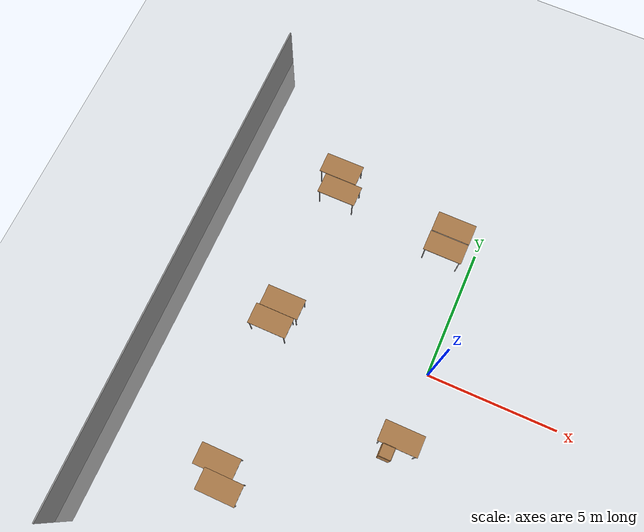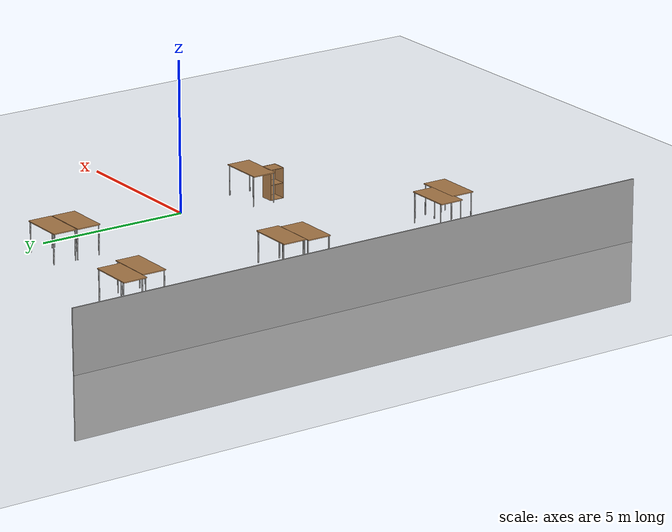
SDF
<sdf version="1.6">
 <world name="default">
  <model name="ground_plane">
   <static>1</static>
   <link name="link">
    <collision name="collision">
     <geometry><plane><normal>0 0 1</normal><size>100 100</size></plane></geometry>
     <surface><friction><ode><mu>100</mu><mu2>50</mu2></ode></friction></surface>
    </collision>
    <visual name="visual">
     <cast_shadows>0</cast_shadows>
     <geometry><plane><normal>0 0 1</normal><size>100 100</size></plane></geometry>
     <material>
      <script><uri>file://media/materials/scripts/gazebo.material</uri><name>Gazebo/Grey</name></script>
     </material>
    </visual>
   </link>
  </model>
  <model name="grey_wall_3">
   <link name="link">
    <inertial>
     <mass>1</mass>
     <inertia><ixx>1</ixx><ixy>0</ixy><ixz>0</ixz><iyy>1</iyy><iyz>0</iyz><izz>1</izz></inertia>
    </inertial>
    <visual name="visual">
     <cast_shadows>0</cast_shadows>
     <geometry><box><size>20 0.05 4.0</size></box></geometry>
     <material>
      <script>
       <uri>model://grey_wall/materials/scripts</uri>
       <uri>model://grey_wall/materials/textures</uri>
       <name>vrc/grey_wall</name>
      </script>
      <ambient>1 1 1 1</ambient>
      <diffuse>1 1 1 1</diffuse>
      <specular>0 0 0 1</specular>
      <emissive>0 0 0 1</emissive>
      <shader type="vertex"><normal_map>__default__</normal_map></shader>
     </material>
    </visual>
    <collision name="collision">
     <geometry><box><size>20 0.05 4.0</size></box></geometry>
     <surface>
      <friction>
       <ode><mu>1</mu><mu2>1</mu2><fdir1>0 0 0</fdir1><slip1>0</slip1><slip2>0</slip2></ode>
       <torsional>
        <coefficient>1</coefficient>
        <patch_radius>0</patch_radius>
        <surface_radius>0</surface_radius>
        <use_patch_radius>1</use_patch_radius>
        <ode><slip>0</slip></ode>
       </torsional>
      </friction>
      <bounce><restitution_coefficient>0</restitution_coefficient><threshold>1e+06</threshold></bounce>
      <contact>
       <collide_without_contact>0</collide_without_contact>
       <collide_without_contact_bitmask>1</collide_without_contact_bitmask>
       <collide_bitmask>1</collide_bitmask>
       <ode>
        <soft_cfm>0</soft_cfm>
        <soft_erp>0.2</soft_erp>
        <kp>1e+13</kp>
        <kd>1</kd>
        <max_vel>0.01</max_vel>
        <min_depth>0</min_depth>
       </ode>
       <bullet>
        <split_impulse>1</split_impulse>
        <split_impulse_penetration_threshold>-0.01</split_impulse_penetration_threshold>
        <soft_cfm>0</soft_cfm>
        <soft_erp>0.2</soft_erp>
        <kp>1e+13</kp>
        <kd>1</kd>
       </bullet>
      </contact>
     </surface>
    </collision>
   </link>
   <static>1</static>
   <pose>-10 0 0 0 0 -1.5708</pose>
  </model>
  <model name="table">
   <static>1</static>
   <link name="link">
    <collision name="surface">
     <pose>0 0 1 0 -0 0</pose>
     <geometry><box><size>1.5 0.8 0.03</size></box></geometry>
     <surface><friction><ode><mu>0.6</mu><mu2>0.6</mu2></ode></friction></surface>
    </collision>
    <visual name="visual1">
     <pose>0 0 1 0 -0 0</pose>
     <geometry><box><size>1.5 0.8 0.03</size></box></geometry>
     <material>
      <script><uri>file://media/materials/scripts/gazebo.material</uri><name>Gazebo/Wood</name></script>
     </material>
    </visual>
    <collision name="front_left_leg">
     <pose>0.68 0.38 0.5 0 -0 0</pose>
     <geometry><cylinder><radius>0.02</radius><length>1</length></cylinder></geometry>
    </collision>
    <visual name="front_left_leg">
     <pose>0.68 0.38 0.5 0 -0 0</pose>
     <geometry><cylinder><radius>0.02</radius><length>1</length></cylinder></geometry>
     <material>
      <script><uri>file://media/materials/scripts/gazebo.material</uri><name>Gazebo/Grey</name></script>
     </material>
    </visual>
    <collision name="front_right_leg">
     <pose>0.68 -0.38 0.5 0 -0 0</pose>
     <geometry><cylinder><radius>0.02</radius><length>1</length></cylinder></geometry>
    </collision>
    <visual name="front_right_leg">
     <pose>0.68 -0.38 0.5 0 -0 0</pose>
     <geometry><cylinder><radius>0.02</radius><length>1</length></cylinder></geometry>
     <material>
      <script><uri>file://media/materials/scripts/gazebo.material</uri><name>Gazebo/Grey</name></script>
     </material>
    </visual>
    <collision name="back_right_leg">
     <pose>-0.68 -0.38 0.5 0 -0 0</pose>
     <geometry><cylinder><radius>0.02</radius><length>1</length></cylinder></geometry>
    </collision>
    <visual name="back_right_leg">
     <pose>-0.68 -0.38 0.5 0 -0 0</pose>
     <geometry><cylinder><radius>0.02</radius><length>1</length></cylinder></geometry>
     <material>
      <script><uri>file://media/materials/scripts/gazebo.material</uri><name>Gazebo/Grey</name></script>
     </material>
    </visual>
    <collision name="back_left_leg">
     <pose>-0.68 0.38 0.5 0 -0 0</pose>
     <geometry><cylinder><radius>0.02</radius><length>1</length></cylinder></geometry>
    </collision>
    <visual name="back_left_leg">
     <pose>-0.68 0.38 0.5 0 -0 0</pose>
     <geometry><cylinder><radius>0.02</radius><length>1</length></cylinder></geometry>
     <material>
      <script><uri>file://media/materials/scripts/gazebo.material</uri><name>Gazebo/Grey</name></script>
     </material>
    </visual>
   </link>
   <pose>-0.079983 -2.60231 0 0 -0 0</pose>
  </model>
  <model name="table_0">
   <static>1</static>
   <link name="link">
    <collision name="surface">
     <pose>0 0 1 0 -0 0</pose>
     <geometry><box><size>1.5 0.8 0.03</size></box></geometry>
     <surface><friction><ode><mu>0.6</mu><mu2>0.6</mu2></ode></friction></surface>
    </collision>
    <visual name="visual1">
     <pose>0 0 1 0 -0 0</pose>
     <geometry><box><size>1.5 0.8 0.03</size></box></geometry>
     <material>
      <script><uri>file://media/materials/scripts/gazebo.material</uri><name>Gazebo/Wood</name></script>
     </material>
    </visual>
    <collision name="front_left_leg">
     <pose>0.68 0.38 0.5 0 -0 0</pose>
     <geometry><cylinder><radius>0.02</radius><length>1</length></cylinder></geometry>
    </collision>
    <visual name="front_left_leg">
     <pose>0.68 0.38 0.5 0 -0 0</pose>
     <geometry><cylinder><radius>0.02</radius><length>1</length></cylinder></geometry>
     <material>
      <script><uri>file://media/materials/scripts/gazebo.material</uri><name>Gazebo/Grey</name></script>
     </material>
    </visual>
    <collision name="front_right_leg">
     <pose>0.68 -0.38 0.5 0 -0 0</pose>
     <geometry><cylinder><radius>0.02</radius><length>1</length></cylinder></geometry>
    </collision>
    <visual name="front_right_leg">
     <pose>0.68 -0.38 0.5 0 -0 0</pose>
     <geometry><cylinder><radius>0.02</radius><length>1</length></cylinder></geometry>
     <material>
      <script><uri>file://media/materials/scripts/gazebo.material</uri><name>Gazebo/Grey</name></script>
     </material>
    </visual>
    <collision name="back_right_leg">
     <pose>-0.68 -0.38 0.5 0 -0 0</pose>
     <geometry><cylinder><radius>0.02</radius><length>1</length></cylinder></geometry>
    </collision>
    <visual name="back_right_leg">
     <pose>-0.68 -0.38 0.5 0 -0 0</pose>
     <geometry><cylinder><radius>0.02</radius><length>1</length></cylinder></geometry>
     <material>
      <script><uri>file://media/materials/scripts/gazebo.material</uri><name>Gazebo/Grey</name></script>
     </material>
    </visual>
    <collision name="back_left_leg">
     <pose>-0.68 0.38 0.5 0 -0 0</pose>
     <geometry><cylinder><radius>0.02</radius><length>1</length></cylinder></geometry>
    </collision>
    <visual name="back_left_leg">
     <pose>-0.68 0.38 0.5 0 -0 0</pose>
     <geometry><cylinder><radius>0.02</radius><length>1</length></cylinder></geometry>
     <material>
      <script><uri>file://media/materials/scripts/gazebo.material</uri><name>Gazebo/Grey</name></script>
     </material>
    </visual>
   </link>
   <pose>-1.18424 5.36108 0 0 -0 0</pose>
  </model>
  <model name="table_1">
   <static>1</static>
   <link name="link">
    <collision name="surface">
     <pose>0 0 1 0 -0 0</pose>
     <geometry><box><size>1.5 0.8 0.03</size></box></geometry>
     <surface><friction><ode><mu>0.6</mu><mu2>0.6</mu2></ode></friction></surface>
    </collision>
    <visual name="visual1">
     <pose>0 0 1 0 -0 0</pose>
     <geometry><box><size>1.5 0.8 0.03</size></box></geometry>
     <material>
      <script><uri>file://media/materials/scripts/gazebo.material</uri><name>Gazebo/Wood</name></script>
     </material>
    </visual>
    <collision name="front_left_leg">
     <pose>0.68 0.38 0.5 0 -0 0</pose>
     <geometry><cylinder><radius>0.02</radius><length>1</length></cylinder></geometry>
    </collision>
    <visual name="front_left_leg">
     <pose>0.68 0.38 0.5 0 -0 0</pose>
     <geometry><cylinder><radius>0.02</radius><length>1</length></cylinder></geometry>
     <material>
      <script><uri>file://media/materials/scripts/gazebo.material</uri><name>Gazebo/Grey</name></script>
     </material>
    </visual>
    <collision name="front_right_leg">
     <pose>0.68 -0.38 0.5 0 -0 0</pose>
     <geometry><cylinder><radius>0.02</radius><length>1</length></cylinder></geometry>
    </collision>
    <visual name="front_right_leg">
     <pose>0.68 -0.38 0.5 0 -0 0</pose>
     <geometry><cylinder><radius>0.02</radius><length>1</length></cylinder></geometry>
     <material>
      <script><uri>file://media/materials/scripts/gazebo.material</uri><name>Gazebo/Grey</name></script>
     </material>
    </visual>
    <collision name="back_right_leg">
     <pose>-0.68 -0.38 0.5 0 -0 0</pose>
     <geometry><cylinder><radius>0.02</radius><length>1</length></cylinder></geometry>
    </collision>
    <visual name="back_right_leg">
     <pose>-0.68 -0.38 0.5 0 -0 0</pose>
     <geometry><cylinder><radius>0.02</radius><length>1</length></cylinder></geometry>
     <material>
      <script><uri>file://media/materials/scripts/gazebo.material</uri><name>Gazebo/Grey</name></script>
     </material>
    </visual>
    <collision name="back_left_leg">
     <pose>-0.68 0.38 0.5 0 -0 0</pose>
     <geometry><cylinder><radius>0.02</radius><length>1</length></cylinder></geometry>
    </collision>
    <visual name="back_left_leg">
     <pose>-0.68 0.38 0.5 0 -0 0</pose>
     <geometry><cylinder><radius>0.02</radius><length>1</length></cylinder></geometry>
     <material>
      <script><uri>file://media/materials/scripts/gazebo.material</uri><name>Gazebo/Grey</name></script>
     </material>
    </visual>
   </link>
   <pose>-1.19395 4.53347 0 0 -0 0</pose>
  </model>
  <model name="cabinet_clone">
   <static>1</static>
   <link name="cabinet_bottom_plate">
    <inertial>
     <pose>0 0 -1 0 -0 0</pose>
     <inertia><ixx>2.05</ixx><ixy>0</ixy><ixz>0</ixz><iyy>2.05</iyy><iyz>0</iyz><izz>2.05</izz></inertia>
     <mass>25</mass>
    </inertial>
    <collision name="cabinet_bottom_plate_geom">
     <pose>0 0 0.01 0 -0 0</pose>
     <geometry><box><size>0.45 0.45 0.02</size></box></geometry>
    </collision>
    <visual name="cabinet_bottom_plate_geom_visual">
     <pose>0 0 0.01 0 -0 0</pose>
     <geometry><box><size>0.45 0.45 0.02</size></box></geometry>
     <material>
      <script><uri>file://media/materials/scripts/gazebo.material</uri><name>Gazebo/Wood</name></script>
     </material>
    </visual>
    <collision name="cabinet_bottom_plate_geom_cabinet_back_plate">
     <pose>0.235 0 0.51 0 -0 0</pose>
     <geometry><box><size>0.02 0.45 1.02</size></box></geometry>
    </collision>
    <visual name="cabinet_bottom_plate_geom_cabinet_back_plate_visual">
     <pose>0.235 0 0.51 0 -0 0</pose>
     <geometry><box><size>0.02 0.45 1.02</size></box></geometry>
     <material>
      <script><uri>file://media/materials/scripts/gazebo.material</uri><name>Gazebo/Wood</name></script>
     </material>
    </visual>
    <collision name="cabinet_bottom_plate_geom_cabinet_left_plate">
     <pose>0 0.235 0.51 0 -0 0</pose>
     <geometry><box><size>0.45 0.02 1.02</size></box></geometry>
    </collision>
    <visual name="cabinet_bottom_plate_geom_cabinet_left_plate_visual">
     <pose>0 0.235 0.51 0 -0 0</pose>
     <geometry><box><size>0.45 0.02 1.02</size></box></geometry>
     <material>
      <script><uri>file://media/materials/scripts/gazebo.material</uri><name>Gazebo/Wood</name></script>
     </material>
    </visual>
    <collision name="cabinet_bottom_plate_geom_cabinet_middle_plate">
     <pose>0 0 0.51 0 -0 0</pose>
     <geometry><box><size>0.45 0.45 0.02</size></box></geometry>
    </collision>
    <visual name="cabinet_bottom_plate_geom_cabinet_middle_plate_visual">
     <pose>0 0 0.51 0 -0 0</pose>
     <geometry><box><size>0.45 0.45 0.02</size></box></geometry>
     <material>
      <script><uri>file://media/materials/scripts/gazebo.material</uri><name>Gazebo/Wood</name></script>
     </material>
    </visual>
    <collision name="cabinet_bottom_plate_geom_cabinet_right_plate">
     <pose>0 -0.235 0.51 0 -0 0</pose>
     <geometry><box><size>0.45 0.02 1.02</size></box></geometry>
    </collision>
    <visual name="cabinet_bottom_plate_geom_cabinet_right_plate_visual">
     <pose>0 -0.235 0.51 0 -0 0</pose>
     <geometry><box><size>0.45 0.02 1.02</size></box></geometry>
     <material>
      <script><uri>file://media/materials/scripts/gazebo.material</uri><name>Gazebo/Wood</name></script>
     </material>
    </visual>
    <collision name="cabinet_bottom_plate_geom_cabinet_top_plate">
     <pose>0 0 1.01 0 -0 0</pose>
     <geometry><box><size>0.45 0.45 0.02</size></box></geometry>
    </collision>
    <visual name="cabinet_bottom_plate_geom_cabinet_top_plate_visual">
     <pose>0 0 1.01 0 -0 0</pose>
     <geometry><box><size>0.45 0.45 0.02</size></box></geometry>
     <material>
      <script><uri>file://media/materials/scripts/gazebo.material</uri><name>Gazebo/Wood</name></script>
     </material>
    </visual>
   </link>
   <pose>-0.373564 -3.22224 0 0 -0 0</pose>
  </model>
  <model name="table_1_clone">
   <static>1</static>
   <link name="link">
    <collision name="surface">
     <pose>0 0 1 0 -0 0</pose>
     <geometry><box><size>1.5 0.8 0.03</size></box></geometry>
     <surface><friction><ode><mu>0.6</mu><mu2>0.6</mu2></ode></friction></surface>
    </collision>
    <visual name="visual1">
     <pose>0 0 1 0 -0 0</pose>
     <geometry><box><size>1.5 0.8 0.03</size></box></geometry>
     <material>
      <script><uri>file://media/materials/scripts/gazebo.material</uri><name>Gazebo/Wood</name></script>
     </material>
    </visual>
    <collision name="front_left_leg">
     <pose>0.68 0.38 0.5 0 -0 0</pose>
     <geometry><cylinder><radius>0.02</radius><length>1</length></cylinder></geometry>
    </collision>
    <visual name="front_left_leg">
     <pose>0.68 0.38 0.5 0 -0 0</pose>
     <geometry><cylinder><radius>0.02</radius><length>1</length></cylinder></geometry>
     <material>
      <script><uri>file://media/materials/scripts/gazebo.material</uri><name>Gazebo/Grey</name></script>
     </material>
    </visual>
    <collision name="front_right_leg">
     <pose>0.68 -0.38 0.5 0 -0 0</pose>
     <geometry><cylinder><radius>0.02</radius><length>1</length></cylinder></geometry>
    </collision>
    <visual name="front_right_leg">
     <pose>0.68 -0.38 0.5 0 -0 0</pose>
     <geometry><cylinder><radius>0.02</radius><length>1</length></cylinder></geometry>
     <material>
      <script><uri>file://media/materials/scripts/gazebo.material</uri><name>Gazebo/Grey</name></script>
     </material>
    </visual>
    <collision name="back_right_leg">
     <pose>-0.68 -0.38 0.5 0 -0 0</pose>
     <geometry><cylinder><radius>0.02</radius><length>1</length></cylinder></geometry>
    </collision>
    <visual name="back_right_leg">
     <pose>-0.68 -0.38 0.5 0 -0 0</pose>
     <geometry><cylinder><radius>0.02</radius><length>1</length></cylinder></geometry>
     <material>
      <script><uri>file://media/materials/scripts/gazebo.material</uri><name>Gazebo/Grey</name></script>
     </material>
    </visual>
    <collision name="back_left_leg">
     <pose>-0.68 0.38 0.5 0 -0 0</pose>
     <geometry><cylinder><radius>0.02</radius><length>1</length></cylinder></geometry>
    </collision>
    <visual name="back_left_leg">
     <pose>-0.68 0.38 0.5 0 -0 0</pose>
     <geometry><cylinder><radius>0.02</radius><length>1</length></cylinder></geometry>
     <material>
      <script><uri>file://media/materials/scripts/gazebo.material</uri><name>Gazebo/Grey</name></script>
     </material>
    </visual>
   </link>
   <pose>-5.73014 5.0657 0 0 -0 0</pose>
  </model>
  <model name="table_1_clone_0">
   <static>1</static>
   <link name="link">
    <collision name="surface">
     <pose>0 0 1 0 -0 0</pose>
     <geometry><box><size>1.5 0.8 0.03</size></box></geometry>
     <surface><friction><ode><mu>0.6</mu><mu2>0.6</mu2></ode></friction></surface>
    </collision>
    <visual name="visual1">
     <pose>0 0 1 0 -0 0</pose>
     <geometry><box><size>1.5 0.8 0.03</size></box></geometry>
     <material>
      <script><uri>file://media/materials/scripts/gazebo.material</uri><name>Gazebo/Wood</name></script>
     </material>
    </visual>
    <collision name="front_left_leg">
     <pose>0.68 0.38 0.5 0 -0 0</pose>
     <geometry><cylinder><radius>0.02</radius><length>1</length></cylinder></geometry>
    </collision>
    <visual name="front_left_leg">
     <pose>0.68 0.38 0.5 0 -0 0</pose>
     <geometry><cylinder><radius>0.02</radius><length>1</length></cylinder></geometry>
     <material>
      <script><uri>file://media/materials/scripts/gazebo.material</uri><name>Gazebo/Grey</name></script>
     </material>
    </visual>
    <collision name="front_right_leg">
     <pose>0.68 -0.38 0.5 0 -0 0</pose>
     <geometry><cylinder><radius>0.02</radius><length>1</length></cylinder></geometry>
    </collision>
    <visual name="front_right_leg">
     <pose>0.68 -0.38 0.5 0 -0 0</pose>
     <geometry><cylinder><radius>0.02</radius><length>1</length></cylinder></geometry>
     <material>
      <script><uri>file://media/materials/scripts/gazebo.material</uri><name>Gazebo/Grey</name></script>
     </material>
    </visual>
    <collision name="back_right_leg">
     <pose>-0.68 -0.38 0.5 0 -0 0</pose>
     <geometry><cylinder><radius>0.02</radius><length>1</length></cylinder></geometry>
    </collision>
    <visual name="back_right_leg">
     <pose>-0.68 -0.38 0.5 0 -0 0</pose>
     <geometry><cylinder><radius>0.02</radius><length>1</length></cylinder></geometry>
     <material>
      <script><uri>file://media/materials/scripts/gazebo.material</uri><name>Gazebo/Grey</name></script>
     </material>
    </visual>
    <collision name="back_left_leg">
     <pose>-0.68 0.38 0.5 0 -0 0</pose>
     <geometry><cylinder><radius>0.02</radius><length>1</length></cylinder></geometry>
    </collision>
    <visual name="back_left_leg">
     <pose>-0.68 0.38 0.5 0 -0 0</pose>
     <geometry><cylinder><radius>0.02</radius><length>1</length></cylinder></geometry>
     <material>
      <script><uri>file://media/materials/scripts/gazebo.material</uri><name>Gazebo/Grey</name></script>
     </material>
    </visual>
   </link>
   <pose>-6.00013 5.8828 0 0 -0 0</pose>
  </model>
  <model name="table_1_clone_clone">
   <static>1</static>
   <link name="link">
    <collision name="surface">
     <pose>0 0 1 0 -0 0</pose>
     <geometry><box><size>1.5 0.8 0.03</size></box></geometry>
     <surface><friction><ode><mu>0.6</mu><mu2>0.6</mu2></ode></friction></surface>
    </collision>
    <visual name="visual1">
     <pose>0 0 1 0 -0 0</pose>
     <geometry><box><size>1.5 0.8 0.03</size></box></geometry>
     <material>
      <script><uri>file://media/materials/scripts/gazebo.material</uri><name>Gazebo/Wood</name></script>
     </material>
    </visual>
    <collision name="front_left_leg">
     <pose>0.68 0.38 0.5 0 -0 0</pose>
     <geometry><cylinder><radius>0.02</radius><length>1</length></cylinder></geometry>
    </collision>
    <visual name="front_left_leg">
     <pose>0.68 0.38 0.5 0 -0 0</pose>
     <geometry><cylinder><radius>0.02</radius><length>1</length></cylinder></geometry>
     <material>
      <script><uri>file://media/materials/scripts/gazebo.material</uri><name>Gazebo/Grey</name></script>
     </material>
    </visual>
    <collision name="front_right_leg">
     <pose>0.68 -0.38 0.5 0 -0 0</pose>
     <geometry><cylinder><radius>0.02</radius><length>1</length></cylinder></geometry>
    </collision>
    <visual name="front_right_leg">
     <pose>0.68 -0.38 0.5 0 -0 0</pose>
     <geometry><cylinder><radius>0.02</radius><length>1</length></cylinder></geometry>
     <material>
      <script><uri>file://media/materials/scripts/gazebo.material</uri><name>Gazebo/Grey</name></script>
     </material>
    </visual>
    <collision name="back_right_leg">
     <pose>-0.68 -0.38 0.5 0 -0 0</pose>
     <geometry><cylinder><radius>0.02</radius><length>1</length></cylinder></geometry>
    </collision>
    <visual name="back_right_leg">
     <pose>-0.68 -0.38 0.5 0 -0 0</pose>
     <geometry><cylinder><radius>0.02</radius><length>1</length></cylinder></geometry>
     <material>
      <script><uri>file://media/materials/scripts/gazebo.material</uri><name>Gazebo/Grey</name></script>
     </material>
    </visual>
    <collision name="back_left_leg">
     <pose>-0.68 0.38 0.5 0 -0 0</pose>
     <geometry><cylinder><radius>0.02</radius><length>1</length></cylinder></geometry>
    </collision>
    <visual name="back_left_leg">
     <pose>-0.68 0.38 0.5 0 -0 0</pose>
     <geometry><cylinder><radius>0.02</radius><length>1</length></cylinder></geometry>
     <material>
      <script><uri>file://media/materials/scripts/gazebo.material</uri><name>Gazebo/Grey</name></script>
     </material>
    </visual>
   </link>
   <pose>-5.86502 0.165513 0 0 -0 0</pose>
  </model>
  <model name="table_1_clone_clone_0">
   <static>1</static>
   <link name="link">
    <collision name="surface">
     <pose>0 0 1 0 -0 0</pose>
     <geometry><box><size>1.5 0.8 0.03</size></box></geometry>
     <surface><friction><ode><mu>0.6</mu><mu2>0.6</mu2></ode></friction></surface>
    </collision>
    <visual name="visual1">
     <pose>0 0 1 0 -0 0</pose>
     <geometry><box><size>1.5 0.8 0.03</size></box></geometry>
     <material>
      <script><uri>file://media/materials/scripts/gazebo.material</uri><name>Gazebo/Wood</name></script>
     </material>
    </visual>
    <collision name="front_left_leg">
     <pose>0.68 0.38 0.5 0 -0 0</pose>
     <geometry><cylinder><radius>0.02</radius><length>1</length></cylinder></geometry>
    </collision>
    <visual name="front_left_leg">
     <pose>0.68 0.38 0.5 0 -0 0</pose>
     <geometry><cylinder><radius>0.02</radius><length>1</length></cylinder></geometry>
     <material>
      <script><uri>file://media/materials/scripts/gazebo.material</uri><name>Gazebo/Grey</name></script>
     </material>
    </visual>
    <collision name="front_right_leg">
     <pose>0.68 -0.38 0.5 0 -0 0</pose>
     <geometry><cylinder><radius>0.02</radius><length>1</length></cylinder></geometry>
    </collision>
    <visual name="front_right_leg">
     <pose>0.68 -0.38 0.5 0 -0 0</pose>
     <geometry><cylinder><radius>0.02</radius><length>1</length></cylinder></geometry>
     <material>
      <script><uri>file://media/materials/scripts/gazebo.material</uri><name>Gazebo/Grey</name></script>
     </material>
    </visual>
    <collision name="back_right_leg">
     <pose>-0.68 -0.38 0.5 0 -0 0</pose>
     <geometry><cylinder><radius>0.02</radius><length>1</length></cylinder></geometry>
    </collision>
    <visual name="back_right_leg">
     <pose>-0.68 -0.38 0.5 0 -0 0</pose>
     <geometry><cylinder><radius>0.02</radius><length>1</length></cylinder></geometry>
     <material>
      <script><uri>file://media/materials/scripts/gazebo.material</uri><name>Gazebo/Grey</name></script>
     </material>
    </visual>
    <collision name="back_left_leg">
     <pose>-0.68 0.38 0.5 0 -0 0</pose>
     <geometry><cylinder><radius>0.02</radius><length>1</length></cylinder></geometry>
    </collision>
    <visual name="back_left_leg">
     <pose>-0.68 0.38 0.5 0 -0 0</pose>
     <geometry><cylinder><radius>0.02</radius><length>1</length></cylinder></geometry>
     <material>
      <script><uri>file://media/materials/scripts/gazebo.material</uri><name>Gazebo/Grey</name></script>
     </material>
    </visual>
   </link>
   <pose>-5.97958 -0.64179 0 0 -0 0</pose>
  </model>
  <model name="table_1_clone_clone_1">
   <static>1</static>
   <link name="link">
    <collision name="surface">
     <pose>0 0 1 0 -0 0</pose>
     <geometry><box><size>1.5 0.8 0.03</size></box></geometry>
     <surface><friction><ode><mu>0.6</mu><mu2>0.6</mu2></ode></friction></surface>
    </collision>
    <visual name="visual1">
     <pose>0 0 1 0 -0 0</pose>
     <geometry><box><size>1.5 0.8 0.03</size></box></geometry>
     <material>
      <script><uri>file://media/materials/scripts/gazebo.material</uri><name>Gazebo/Wood</name></script>
     </material>
    </visual>
    <collision name="front_left_leg">
     <pose>0.68 0.38 0.5 0 -0 0</pose>
     <geometry><cylinder><radius>0.02</radius><length>1</length></cylinder></geometry>
    </collision>
    <visual name="front_left_leg">
     <pose>0.68 0.38 0.5 0 -0 0</pose>
     <geometry><cylinder><radius>0.02</radius><length>1</length></cylinder></geometry>
     <material>
      <script><uri>file://media/materials/scripts/gazebo.material</uri><name>Gazebo/Grey</name></script>
     </material>
    </visual>
    <collision name="front_right_leg">
     <pose>0.68 -0.38 0.5 0 -0 0</pose>
     <geometry><cylinder><radius>0.02</radius><length>1</length></cylinder></geometry>
    </collision>
    <visual name="front_right_leg">
     <pose>0.68 -0.38 0.5 0 -0 0</pose>
     <geometry><cylinder><radius>0.02</radius><length>1</length></cylinder></geometry>
     <material>
      <script><uri>file://media/materials/scripts/gazebo.material</uri><name>Gazebo/Grey</name></script>
     </material>
    </visual>
    <collision name="back_right_leg">
     <pose>-0.68 -0.38 0.5 0 -0 0</pose>
     <geometry><cylinder><radius>0.02</radius><length>1</length></cylinder></geometry>
    </collision>
    <visual name="back_right_leg">
     <pose>-0.68 -0.38 0.5 0 -0 0</pose>
     <geometry><cylinder><radius>0.02</radius><length>1</length></cylinder></geometry>
     <material>
      <script><uri>file://media/materials/scripts/gazebo.material</uri><name>Gazebo/Grey</name></script>
     </material>
    </visual>
    <collision name="back_left_leg">
     <pose>-0.68 0.38 0.5 0 -0 0</pose>
     <geometry><cylinder><radius>0.02</radius><length>1</length></cylinder></geometry>
    </collision>
    <visual name="back_left_leg">
     <pose>-0.68 0.38 0.5 0 -0 0</pose>
     <geometry><cylinder><radius>0.02</radius><length>1</length></cylinder></geometry>
     <material>
      <script><uri>file://media/materials/scripts/gazebo.material</uri><name>Gazebo/Grey</name></script>
     </material>
    </visual>
   </link>
   <pose>-5.57466 -5.86249 0 0 -0 0</pose>
  </model>
  <model name="table_1_clone_clone_2">
   <static>1</static>
   <link name="link">
    <collision name="surface">
     <pose>0 0 1 0 -0 0</pose>
     <geometry><box><size>1.5 0.8 0.03</size></box></geometry>
     <surface><friction><ode><mu>0.6</mu><mu2>0.6</mu2></ode></friction></surface>
    </collision>
    <visual name="visual1">
     <pose>0 0 1 0 -0 0</pose>
     <geometry><box><size>1.5 0.8 0.03</size></box></geometry>
     <material>
      <script><uri>file://media/materials/scripts/gazebo.material</uri><name>Gazebo/Wood</name></script>
     </material>
    </visual>
    <collision name="front_left_leg">
     <pose>0.68 0.38 0.5 0 -0 0</pose>
     <geometry><cylinder><radius>0.02</radius><length>1</length></cylinder></geometry>
    </collision>
    <visual name="front_left_leg">
     <pose>0.68 0.38 0.5 0 -0 0</pose>
     <geometry><cylinder><radius>0.02</radius><length>1</length></cylinder></geometry>
     <material>
      <script><uri>file://media/materials/scripts/gazebo.material</uri><name>Gazebo/Grey</name></script>
     </material>
    </visual>
    <collision name="front_right_leg">
     <pose>0.68 -0.38 0.5 0 -0 0</pose>
     <geometry><cylinder><radius>0.02</radius><length>1</length></cylinder></geometry>
    </collision>
    <visual name="front_right_leg">
     <pose>0.68 -0.38 0.5 0 -0 0</pose>
     <geometry><cylinder><radius>0.02</radius><length>1</length></cylinder></geometry>
     <material>
      <script><uri>file://media/materials/scripts/gazebo.material</uri><name>Gazebo/Grey</name></script>
     </material>
    </visual>
    <collision name="back_right_leg">
     <pose>-0.68 -0.38 0.5 0 -0 0</pose>
     <geometry><cylinder><radius>0.02</radius><length>1</length></cylinder></geometry>
    </collision>
    <visual name="back_right_leg">
     <pose>-0.68 -0.38 0.5 0 -0 0</pose>
     <geometry><cylinder><radius>0.02</radius><length>1</length></cylinder></geometry>
     <material>
      <script><uri>file://media/materials/scripts/gazebo.material</uri><name>Gazebo/Grey</name></script>
     </material>
    </visual>
    <collision name="back_left_leg">
     <pose>-0.68 0.38 0.5 0 -0 0</pose>
     <geometry><cylinder><radius>0.02</radius><length>1</length></cylinder></geometry>
    </collision>
    <visual name="back_left_leg">
     <pose>-0.68 0.38 0.5 0 -0 0</pose>
     <geometry><cylinder><radius>0.02</radius><length>1</length></cylinder></geometry>
     <material>
      <script><uri>file://media/materials/scripts/gazebo.material</uri><name>Gazebo/Grey</name></script>
     </material>
    </visual>
   </link>
   <pose>-5.12777 -6.5965 0 0 -0 0</pose>
  </model>
 </world>
</sdf>
